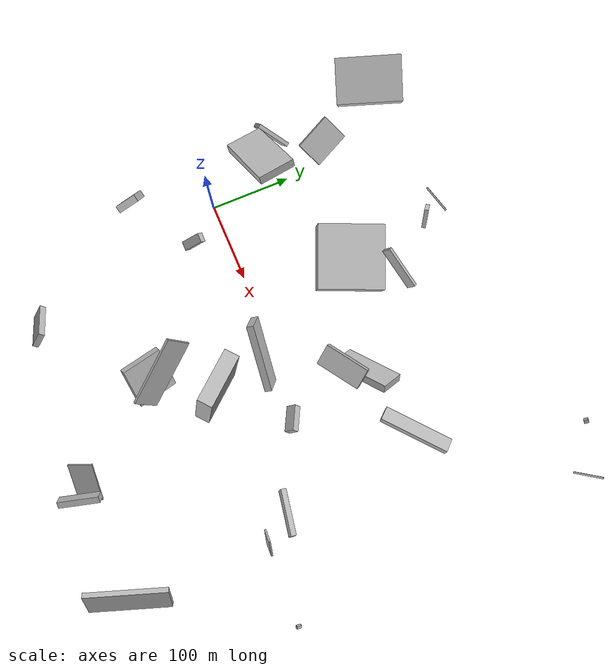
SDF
<sdf version="1.6">
 <world name="default">
  <scene>
   <sky><clouds><speed>12</speed></clouds></sky>
   <ambient>0.4 0.4 0.4 1</ambient>
   <background>0.7 0.7 0.7 1</background>
   <shadows>1</shadows>
  </scene>
  <gravity>0 0 -9.8066</gravity>
  <magnetic_field>6e-06 2.3e-05 -4.2e-05</magnetic_field>
  <physics default="0" name="default_physics" type="ode">
   <ode>
    <solver>
     <type>quick</type>
     <iters>10</iters>
     <sor>1.0</sor>
     <use_dynamic_moi_rescaling>0</use_dynamic_moi_rescaling>
    </solver>
    <constraints>
     <cfm>0</cfm>
     <erp>0.2</erp>
     <contact_max_correcting_vel>100</contact_max_correcting_vel>
     <contact_surface_layer>0.001</contact_surface_layer>
    </constraints>
   </ode>
   <max_step_size>0.004</max_step_size>
   <real_time_factor>1</real_time_factor>
   <real_time_update_rate>250</real_time_update_rate>
  </physics>
  <light name="sun" type="directional">
   <pose>0 0 10 0 0 0</pose>
   <diffuse>0.8 0.8 0.8 1</diffuse>
   <specular>0.2 0.2 0.2 1</specular>
   <attenuation>
    <range>1000</range>
    <constant>0.9</constant>
    <linear>0.01</linear>
    <quadratic>0.001</quadratic>
   </attenuation>
   <direction>-0.5 0.1 -0.9</direction>
  </light>
  <model name="building_1">
   <static>0</static>
   <pose>208.21591338337703 -14.490772385947787 74.9367474481661 0.6480111179383495 -0.27086484913978803 1.2566275760863619</pose>
   <link name="link">
    <gravity>0</gravity>
    <pose>0 0 12.5 0 0 0</pose>
    <collision name="collision"><geometry><box><size>8 80 25</size></box></geometry></collision>
    <visual name="visual">
     <cast_shadows>0</cast_shadows>
     <geometry><box><size>8 80 25</size></box></geometry>
     <material>
      <script>
       <uri>model://HANNAS_wall/materials/scripts</uri>
       <uri>model://HANNAS_wall/materials/textures</uri>
       <name>vrc/HANNAS_wall</name>
      </script>
     </material>
    </visual>
   </link>
  </model>
  <model name="building_2">
   <static>0</static>
   <pose>170.7698938925065 -124.75101017047413 27.818839152895542 1.2628585635607374 0.8222768887185629 0.02856536376902446</pose>
   <link name="link">
    <gravity>0</gravity>
    <pose>0 0 24.0 0 0 0</pose>
    <collision name="collision"><geometry><box><size>52 9 48</size></box></geometry></collision>
    <visual name="visual">
     <cast_shadows>0</cast_shadows>
     <geometry><box><size>52 9 48</size></box></geometry>
     <material>
      <script>
       <uri>model://HANNAS_wall/materials/scripts</uri>
       <uri>model://HANNAS_wall/materials/textures</uri>
       <name>vrc/HANNAS_wall</name>
      </script>
     </material>
    </visual>
   </link>
  </model>
  <model name="building_3">
   <static>0</static>
   <pose>266.13698163003113 98.01354277177506 28.784557335665525 0.9016339320088567 -0.39468999308117686 0.6033297406350723</pose>
   <link name="link">
    <gravity>0</gravity>
    <pose>0 0 15.5 0 0 0</pose>
    <collision name="collision"><geometry><box><size>71 9 31</size></box></geometry></collision>
    <visual name="visual">
     <cast_shadows>0</cast_shadows>
     <geometry><box><size>71 9 31</size></box></geometry>
     <material>
      <script>
       <uri>model://HANNAS_wall/materials/scripts</uri>
       <uri>model://HANNAS_wall/materials/textures</uri>
       <name>vrc/HANNAS_wall</name>
      </script>
     </material>
    </visual>
   </link>
  </model>
  <model name="building_4">
   <static>0</static>
   <pose>195.85567726667753 -117.62154857773947 82.69515347665103 0.4412524441176528 -0.43160905126190946 0.4334396121276166</pose>
   <link name="link">
    <gravity>0</gravity>
    <pose>0 0 16.5 0 0 0</pose>
    <collision name="collision"><geometry><box><size>3 80 33</size></box></geometry></collision>
    <visual name="visual">
     <cast_shadows>0</cast_shadows>
     <geometry><box><size>3 80 33</size></box></geometry>
     <material>
      <script>
       <uri>model://HANNAS_wall/materials/scripts</uri>
       <uri>model://HANNAS_wall/materials/textures</uri>
       <name>vrc/HANNAS_wall</name>
      </script>
     </material>
    </visual>
   </link>
  </model>
  <model name="building_5">
   <static>0</static>
   <pose>-33.35916809114537 112.20836175882135 27.227489496173007 -0.5167559874695429 0.9853833097493784 -2.995065202390679</pose>
   <link name="link">
    <gravity>0</gravity>
    <pose>0 0 21.5 0 0 0</pose>
    <collision name="collision"><geometry><box><size>25 5 43</size></box></geometry></collision>
    <visual name="visual">
     <cast_shadows>0</cast_shadows>
     <geometry><box><size>25 5 43</size></box></geometry>
     <material>
      <script>
       <uri>model://HANNAS_wall/materials/scripts</uri>
       <uri>model://HANNAS_wall/materials/textures</uri>
       <name>vrc/HANNAS_wall</name>
      </script>
     </material>
    </visual>
   </link>
  </model>
  <model name="building_6">
   <static>0</static>
   <pose>240.87193350998476 -71.65771281077383 113.01711943688018 1.4721818142756835 -0.12303805237753086 -0.8541484540659761</pose>
   <link name="link">
    <gravity>0</gravity>
    <pose>0 0 8.5 0 0 0</pose>
    <collision name="collision"><geometry><box><size>60 80 17</size></box></geometry></collision>
    <visual name="visual">
     <cast_shadows>0</cast_shadows>
     <geometry><box><size>60 80 17</size></box></geometry>
     <material>
      <script>
       <uri>model://HANNAS_wall/materials/scripts</uri>
       <uri>model://HANNAS_wall/materials/textures</uri>
       <name>vrc/HANNAS_wall</name>
      </script>
     </material>
    </visual>
   </link>
  </model>
  <model name="building_7">
   <static>0</static>
   <pose>101.92259653550238 238.39487125361075 65.28159426402242 1.9919997521319714 1.1008502418160295 2.2552702603713795</pose>
   <link name="link">
    <gravity>0</gravity>
    <pose>0 0 17.5 0 0 0</pose>
    <collision name="collision"><geometry><box><size>2 2 35</size></box></geometry></collision>
    <visual name="visual">
     <cast_shadows>0</cast_shadows>
     <geometry><box><size>2 2 35</size></box></geometry>
     <material>
      <script>
       <uri>model://HANNAS_wall/materials/scripts</uri>
       <uri>model://HANNAS_wall/materials/textures</uri>
       <name>vrc/HANNAS_wall</name>
      </script>
     </material>
    </visual>
   </link>
  </model>
  <model name="building_8">
   <static>0</static>
   <pose>350.13842882329027 111.81760419665275 54.02096696605017 1.363968579596271 0.05047827948473028 0.704737466074881</pose>
   <link name="link">
    <gravity>0</gravity>
    <pose>0 0 8.0 0 0 0</pose>
    <collision name="collision"><geometry><box><size>80 9 16</size></box></geometry></collision>
    <visual name="visual">
     <cast_shadows>0</cast_shadows>
     <geometry><box><size>80 9 16</size></box></geometry>
     <material>
      <script>
       <uri>model://HANNAS_wall/materials/scripts</uri>
       <uri>model://HANNAS_wall/materials/textures</uri>
       <name>vrc/HANNAS_wall</name>
      </script>
     </material>
    </visual>
   </link>
  </model>
  <model name="building_9">
   <static>0</static>
   <pose>75.04756046205806 -40.85619513930485 131.63316893062427 1.8304499906357257 -0.6969700131241204 1.400024372492503</pose>
   <link name="link">
    <gravity>0</gravity>
    <pose>0 0 5.0 0 0 0</pose>
    <collision name="collision"><geometry><box><size>25 7 10</size></box></geometry></collision>
    <visual name="visual">
     <cast_shadows>0</cast_shadows>
     <geometry><box><size>25 7 10</size></box></geometry>
     <material>
      <script>
       <uri>model://HANNAS_wall/materials/scripts</uri>
       <uri>model://HANNAS_wall/materials/textures</uri>
       <name>vrc/HANNAS_wall</name>
      </script>
     </material>
    </visual>
   </link>
  </model>
  <model name="building_10">
   <static>0</static>
   <pose>419.4217906724753 293.17008124109867 31.849934723980816 0.5573266147794693 0.5615945188538739 0.10659567220970047</pose>
   <link name="link">
    <gravity>0</gravity>
    <pose>0 0 2.5 0 0 0</pose>
    <collision name="collision"><geometry><box><size>4 5 5</size></box></geometry></collision>
    <visual name="visual">
     <cast_shadows>0</cast_shadows>
     <geometry><box><size>4 5 5</size></box></geometry>
     <material>
      <script>
       <uri>model://HANNAS_wall/materials/scripts</uri>
       <uri>model://HANNAS_wall/materials/textures</uri>
       <name>vrc/HANNAS_wall</name>
      </script>
     </material>
    </visual>
   </link>
  </model>
  <model name="building_11">
   <static>0</static>
   <pose>-30.49505838447648 225.0373982046063 53.48607701904721 0.2196878343244787 -1.131484912885265 -0.5876858132603273</pose>
   <link name="link">
    <gravity>0</gravity>
    <pose>0 0 27.5 0 0 0</pose>
    <collision name="collision"><geometry><box><size>45 80 55</size></box></geometry></collision>
    <visual name="visual">
     <cast_shadows>0</cast_shadows>
     <geometry><box><size>45 80 55</size></box></geometry>
     <material>
      <script>
       <uri>model://HANNAS_wall/materials/scripts</uri>
       <uri>model://HANNAS_wall/materials/textures</uri>
       <name>vrc/HANNAS_wall</name>
      </script>
     </material>
    </visual>
   </link>
  </model>
  <model name="building_12">
   <static>0</static>
   <pose>122.3451072622858 87.57235491717789 39.43578211310765 -1.9593575479847543 -1.3499830349577089 -0.012599948452127903</pose>
   <link name="link">
    <gravity>0</gravity>
    <pose>0 0 40.0 0 0 0</pose>
    <collision name="collision"><geometry><box><size>28 78 80</size></box></geometry></collision>
    <visual name="visual">
     <cast_shadows>0</cast_shadows>
     <geometry><box><size>28 78 80</size></box></geometry>
     <material>
      <script>
       <uri>model://HANNAS_wall/materials/scripts</uri>
       <uri>model://HANNAS_wall/materials/textures</uri>
       <name>vrc/HANNAS_wall</name>
      </script>
     </material>
    </visual>
   </link>
  </model>
  <model name="building_13">
   <static>0</static>
   <pose>277.48627137426007 -8.338831158950887 56.76566227992185 -1.3397028836153173 -0.798100025459433 -2.2165137025425343</pose>
   <link name="link">
    <gravity>0</gravity>
    <pose>0 0 14.5 0 0 0</pose>
    <collision name="collision"><geometry><box><size>8 13 29</size></box></geometry></collision>
    <visual name="visual">
     <cast_shadows>0</cast_shadows>
     <geometry><box><size>8 13 29</size></box></geometry>
     <material>
      <script>
       <uri>model://HANNAS_wall/materials/scripts</uri>
       <uri>model://HANNAS_wall/materials/textures</uri>
       <name>vrc/HANNAS_wall</name>
      </script>
     </material>
    </visual>
   </link>
  </model>
  <model name="building_14">
   <static>0</static>
   <pose>355.504164497637 -55.015447053092316 45.064574053601476 1.5167077077179545 0.20640361562136184 1.3827065419369342</pose>
   <link name="link">
    <gravity>0</gravity>
    <pose>0 0 25.5 0 0 0</pose>
    <collision name="collision"><geometry><box><size>6 15 51</size></box></geometry></collision>
    <visual name="visual">
     <cast_shadows>0</cast_shadows>
     <geometry><box><size>6 15 51</size></box></geometry>
     <material>
      <script>
       <uri>model://HANNAS_wall/materials/scripts</uri>
       <uri>model://HANNAS_wall/materials/textures</uri>
       <name>vrc/HANNAS_wall</name>
      </script>
     </material>
    </visual>
   </link>
  </model>
  <model name="building_15">
   <static>0</static>
   <pose>125.1698689496288 233.3649244637206 30.313913023774518 -1.6471617287243958 0.3204273177411088 2.4888483105382697</pose>
   <link name="link">
    <gravity>0</gravity>
    <pose>0 0 2.5 0 0 0</pose>
    <collision name="collision"><geometry><box><size>9 34 5</size></box></geometry></collision>
    <visual name="visual">
     <cast_shadows>0</cast_shadows>
     <geometry><box><size>9 34 5</size></box></geometry>
     <material>
      <script>
       <uri>model://HANNAS_wall/materials/scripts</uri>
       <uri>model://HANNAS_wall/materials/textures</uri>
       <name>vrc/HANNAS_wall</name>
      </script>
     </material>
    </visual>
   </link>
  </model>
  <model name="building_16">
   <static>0</static>
   <pose>-40.15627192115833 -87.57444905388753 25.016603874056635 0.2837854072019549 0.43339463355671004 0.2347066181292006</pose>
   <link name="link">
    <gravity>0</gravity>
    <pose>0 0 22.5 0 0 0</pose>
    <collision name="collision"><geometry><box><size>9 26 45</size></box></geometry></collision>
    <visual name="visual">
     <cast_shadows>0</cast_shadows>
     <geometry><box><size>9 26 45</size></box></geometry>
     <material>
      <script>
       <uri>model://HANNAS_wall/materials/scripts</uri>
       <uri>model://HANNAS_wall/materials/textures</uri>
       <name>vrc/HANNAS_wall</name>
      </script>
     </material>
    </visual>
   </link>
  </model>
  <model name="building_17">
   <static>0</static>
   <pose>487.6426326582948 -90.06650544552944 116.96040327980458 2.5359309495066187 -0.5401416485926206 -1.6933133895725738</pose>
   <link name="link">
    <gravity>0</gravity>
    <pose>0 0 1.5 0 0 0</pose>
    <collision name="collision"><geometry><box><size>5 3 3</size></box></geometry></collision>
    <visual name="visual">
     <cast_shadows>0</cast_shadows>
     <geometry><box><size>5 3 3</size></box></geometry>
     <material>
      <script>
       <uri>model://HANNAS_wall/materials/scripts</uri>
       <uri>model://HANNAS_wall/materials/textures</uri>
       <name>vrc/HANNAS_wall</name>
      </script>
     </material>
    </visual>
   </link>
  </model>
  <model name="building_18">
   <static>0</static>
   <pose>408.50837267196516 -90.05121461930646 60.450483238155996 -2.110512973491903 0.1212112774483037 1.4929209381909045</pose>
   <link name="link">
    <gravity>0</gravity>
    <pose>0 0 8.0 0 0 0</pose>
    <collision name="collision"><geometry><box><size>2 29 16</size></box></geometry></collision>
    <visual name="visual">
     <cast_shadows>0</cast_shadows>
     <geometry><box><size>2 29 16</size></box></geometry>
     <material>
      <script>
       <uri>model://HANNAS_wall/materials/scripts</uri>
       <uri>model://HANNAS_wall/materials/textures</uri>
       <name>vrc/HANNAS_wall</name>
      </script>
     </material>
    </visual>
   </link>
  </model>
  <model name="building_19">
   <static>0</static>
   <pose>71.35565208785901 -241.78660164454868 30.71751060317886 0.8679912394262211 -0.6377783656310266 -0.1391245394692265</pose>
   <link name="link">
    <gravity>0</gravity>
    <pose>0 0 3.5 0 0 0</pose>
    <collision name="collision"><geometry><box><size>54 19 7</size></box></geometry></collision>
    <visual name="visual">
     <cast_shadows>0</cast_shadows>
     <geometry><box><size>54 19 7</size></box></geometry>
     <material>
      <script>
       <uri>model://HANNAS_wall/materials/scripts</uri>
       <uri>model://HANNAS_wall/materials/textures</uri>
       <name>vrc/HANNAS_wall</name>
      </script>
     </material>
    </visual>
   </link>
  </model>
  <model name="building_20">
   <static>0</static>
   <pose>411.52472544742596 -189.66916283271158 153.6480430053872 -1.4637129074422643 -1.169202303173036 2.701134523260541</pose>
   <link name="link">
    <gravity>0</gravity>
    <pose>0 0 40.0 0 0 0</pose>
    <collision name="collision"><geometry><box><size>39 5 80</size></box></geometry></collision>
    <visual name="visual">
     <cast_shadows>0</cast_shadows>
     <geometry><box><size>39 5 80</size></box></geometry>
     <material>
      <script>
       <uri>model://HANNAS_wall/materials/scripts</uri>
       <uri>model://HANNAS_wall/materials/textures</uri>
       <name>vrc/HANNAS_wall</name>
      </script>
     </material>
    </visual>
   </link>
  </model>
  <model name="building_21">
   <static>0</static>
   <pose>-1.9718275317133869 146.90112344520622 68.55112894316444 -0.2807441851064543 -0.5530433915764937 -2.583566027446764</pose>
   <link name="link">
    <gravity>0</gravity>
    <pose>0 0 2.5 0 0 0</pose>
    <collision name="collision"><geometry><box><size>34 46 5</size></box></geometry></collision>
    <visual name="visual">
     <cast_shadows>0</cast_shadows>
     <geometry><box><size>34 46 5</size></box></geometry>
     <material>
      <script>
       <uri>model://HANNAS_wall/materials/scripts</uri>
       <uri>model://HANNAS_wall/materials/textures</uri>
       <name>vrc/HANNAS_wall</name>
      </script>
     </material>
    </visual>
   </link>
  </model>
  <model name="building_22">
   <static>0</static>
   <pose>-36.05534198287059 61.4363013386462 76.04256858496939 0.1843953312685269 -1.0756882514594495 -3.1354427446674054</pose>
   <link name="link">
    <gravity>0</gravity>
    <pose>0 0 40.0 0 0 0</pose>
    <collision name="collision"><geometry><box><size>10 45 80</size></box></geometry></collision>
    <visual name="visual">
     <cast_shadows>0</cast_shadows>
     <geometry><box><size>10 45 80</size></box></geometry>
     <material>
      <script>
       <uri>model://HANNAS_wall/materials/scripts</uri>
       <uri>model://HANNAS_wall/materials/textures</uri>
       <name>vrc/HANNAS_wall</name>
      </script>
     </material>
    </visual>
   </link>
  </model>
  <model name="building_23">
   <static>0</static>
   <pose>467.43242333341755 258.2409667111124 11.256400662023015 -1.1892847519518073 0.14836722694733656 -0.5872391678738078</pose>
   <link name="link">
    <gravity>0</gravity>
    <pose>0 0 16.5 0 0 0</pose>
    <collision name="collision"><geometry><box><size>2 8 33</size></box></geometry></collision>
    <visual name="visual">
     <cast_shadows>0</cast_shadows>
     <geometry><box><size>2 8 33</size></box></geometry>
     <material>
      <script>
       <uri>model://HANNAS_wall/materials/scripts</uri>
       <uri>model://HANNAS_wall/materials/textures</uri>
       <name>vrc/HANNAS_wall</name>
      </script>
     </material>
    </visual>
   </link>
  </model>
  <model name="building_24">
   <static>0</static>
   <pose>275.66428386223635 -273.2073937788441 12.355884392486852 2.9269713647092876 -0.6420736082627951 2.9902090902351666</pose>
   <link name="link">
    <gravity>0</gravity>
    <pose>0 0 5.5 0 0 0</pose>
    <collision name="collision"><geometry><box><size>8 50 11</size></box></geometry></collision>
    <visual name="visual">
     <cast_shadows>0</cast_shadows>
     <geometry><box><size>8 50 11</size></box></geometry>
     <material>
      <script>
       <uri>model://HANNAS_wall/materials/scripts</uri>
       <uri>model://HANNAS_wall/materials/textures</uri>
       <name>vrc/HANNAS_wall</name>
      </script>
     </material>
    </visual>
   </link>
  </model>
  <model name="building_25">
   <static>0</static>
   <pose>241.83701322895516 42.53849835931579 91.70474516177103 1.4446663333426575 1.0747577055318192 2.0370177790361916</pose>
   <link name="link">
    <gravity>0</gravity>
    <pose>0 0 26.0 0 0 0</pose>
    <collision name="collision"><geometry><box><size>8 24 52</size></box></geometry></collision>
    <visual name="visual">
     <cast_shadows>0</cast_shadows>
     <geometry><box><size>8 24 52</size></box></geometry>
     <material>
      <script>
       <uri>model://HANNAS_wall/materials/scripts</uri>
       <uri>model://HANNAS_wall/materials/textures</uri>
       <name>vrc/HANNAS_wall</name>
      </script>
     </material>
    </visual>
   </link>
  </model>
  <model name="building_26">
   <static>0</static>
   <pose>238.1415705042377 -255.043396108634 24.245081676249242 2.950260746826855 0.7284125026326723 2.609106187355645</pose>
   <link name="link">
    <gravity>0</gravity>
    <pose>0 0 27.5 0 0 0</pose>
    <collision name="collision"><geometry><box><size>2 29 55</size></box></geometry></collision>
    <visual name="visual">
     <cast_shadows>0</cast_shadows>
     <geometry><box><size>2 29 55</size></box></geometry>
     <material>
      <script>
       <uri>model://HANNAS_wall/materials/scripts</uri>
       <uri>model://HANNAS_wall/materials/textures</uri>
       <name>vrc/HANNAS_wall</name>
      </script>
     </material>
    </visual>
   </link>
  </model>
  <model name="building_27">
   <static>0</static>
   <pose>173.96671534544143 166.6134036572104 44.8406674733809 0.47268560055528536 -0.5439450120069642 -2.8330651392437702</pose>
   <link name="link">
    <gravity>0</gravity>
    <pose>0 0 6.0 0 0 0</pose>
    <collision name="collision"><geometry><box><size>56 4 12</size></box></geometry></collision>
    <visual name="visual">
     <cast_shadows>0</cast_shadows>
     <geometry><box><size>56 4 12</size></box></geometry>
     <material>
      <script>
       <uri>model://HANNAS_wall/materials/scripts</uri>
       <uri>model://HANNAS_wall/materials/textures</uri>
       <name>vrc/HANNAS_wall</name>
      </script>
     </material>
    </visual>
   </link>
  </model>
 </world>
</sdf>
